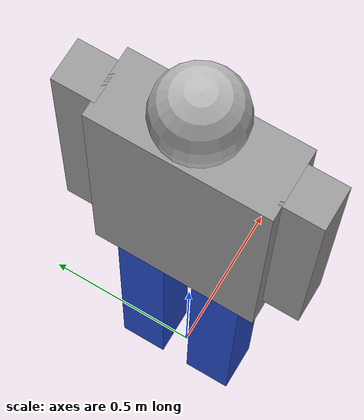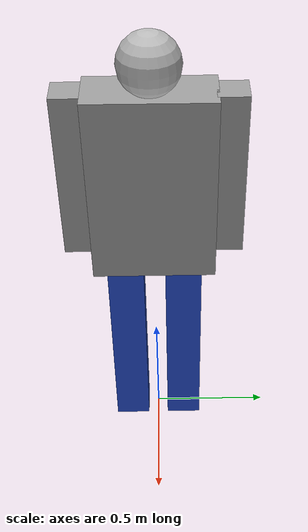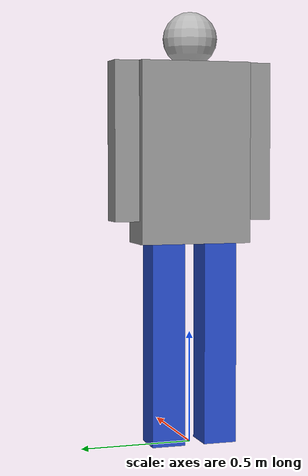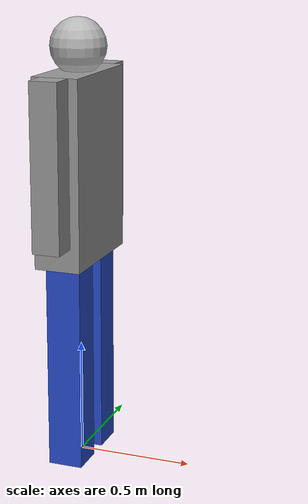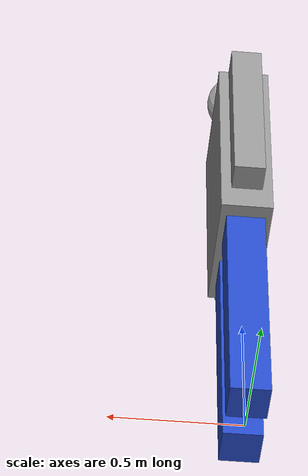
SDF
<?xml version="1.0" ?>
<sdf version="1.5">
  <model name="human_actor">
    <pose>0 0 0 0 0 0</pose>
    <static>false</static>

    <link name="human_base_link">
      <pose>0 0 0 0 0 0</pose>
      <inertial>
        <mass>70.0</mass>
        <inertia>
          <ixx>100.0</ixx> <ixy>0</ixy> <ixz>0</ixz>
          <iyy>100.0</iyy> <iyz>0</iyz>
          <izz>100.0</izz>
        </inertia>
      </inertial>

      <!-- COLLISION (Split Legs for Leg Detector) -->
      <!-- Left Leg (offset -0.12) -->
      <collision name="left_leg_collision">
        <pose>0 -0.12 0.45 0 0 0</pose>
        <geometry>
          <cylinder>
            <radius>0.08</radius>
            <length>0.9</length>
          </cylinder>
        </geometry>
      </collision>

      <!-- Right Leg (offset +0.12) -->
      <collision name="right_leg_collision">
        <pose>0 0.12 0.45 0 0 0</pose>
        <geometry>
          <cylinder>
             <radius>0.08</radius>
            <length>0.9</length>
          </cylinder>
        </geometry>
      </collision>

      <!-- Upper Body (Torso) -->
      <collision name="torso_collision">
        <pose>0 0 1.35 0 0 0</pose>
        <geometry>
          <box>
            <size>0.25 0.5 0.9</size>
          </box>
        </geometry>
      </collision>

      <!-- VISUALS (Constructed Human Figure ~1.8m) -->

      <!-- Left Leg -->
      <visual name="left_leg">
        <pose>0 -0.12 0.45 0 0 0</pose>
        <geometry>
          <box>
            <size>0.15 0.15 0.9</size>
          </box>
        </geometry>
        <material>
          <script>
            <uri>file://media/materials/scripts/gazebo.material</uri>
            <name>Gazebo/Blue</name>
          </script>
        </material>
      </visual>

      <!-- Right Leg -->
      <visual name="right_leg">
        <pose>0 0.12 0.45 0 0 0</pose>
        <geometry>
          <box>
            <size>0.15 0.15 0.9</size>
          </box>
        </geometry>
        <material>
          <script>
            <uri>file://media/materials/scripts/gazebo.material</uri>
            <name>Gazebo/Blue</name>
          </script>
        </material>
      </visual>

      <!-- Torso -->
      <visual name="torso">
        <pose>0 0 1.3 0 0 0</pose>
        <geometry>
          <box>
            <size>0.2 0.5 0.8</size>
          </box>
        </geometry>
        <material>
          <script>
            <uri>file://media/materials/scripts/gazebo.material</uri>
            <name>Gazebo/Grey</name>
          </script>
        </material>
      </visual>

      <!-- Head -->
      <visual name="head">
        <pose>0 0 1.8 0 0 0</pose>
        <geometry>
          <sphere>
            <radius>0.12</radius>
          </sphere>
        </geometry>
        <material>
          <script>
            <uri>file://media/materials/scripts/gazebo.material</uri>
            <name>Gazebo/Flesh</name>
          </script>
        </material>
      </visual>

      <!-- Left Arm -->
      <visual name="left_arm">
        <pose>0 -0.3 1.35 0 0 0</pose>
        <geometry>
          <box>
            <size>0.12 0.12 0.7</size>
          </box>
        </geometry>
        <material>
          <script>
            <uri>file://media/materials/scripts/gazebo.material</uri>
            <name>Gazebo/Grey</name>
          </script>
        </material>
      </visual>

       <!-- Right Arm -->
      <visual name="right_arm">
        <pose>0 0.3 1.35 0 0 0</pose>
        <geometry>
          <box>
            <size>0.12 0.12 0.7</size>
          </box>
        </geometry>
        <material>
          <script>
            <uri>file://media/materials/scripts/gazebo.material</uri>
            <name>Gazebo/Grey</name>
          </script>
        </material>
      </visual>

    </link>

    <!-- Planar Move Plugin -->
    <plugin name="human_control" filename="libgazebo_ros_planar_move.so">
      <commandTopic>/human/cmd_vel</commandTopic>
      <odometryTopic>/human/odom</odometryTopic>
      <odometryFrame>human_odom</odometryFrame>
      <odometryRate>20.0</odometryRate>
      <robotBaseFrame>human_base_link</robotBaseFrame>
    </plugin>
  </model>
</sdf>
